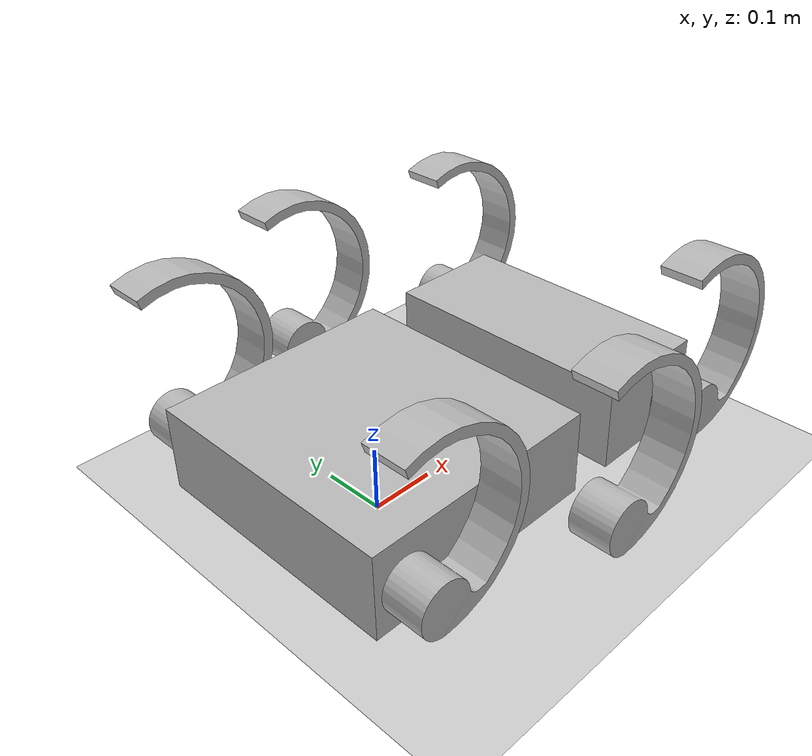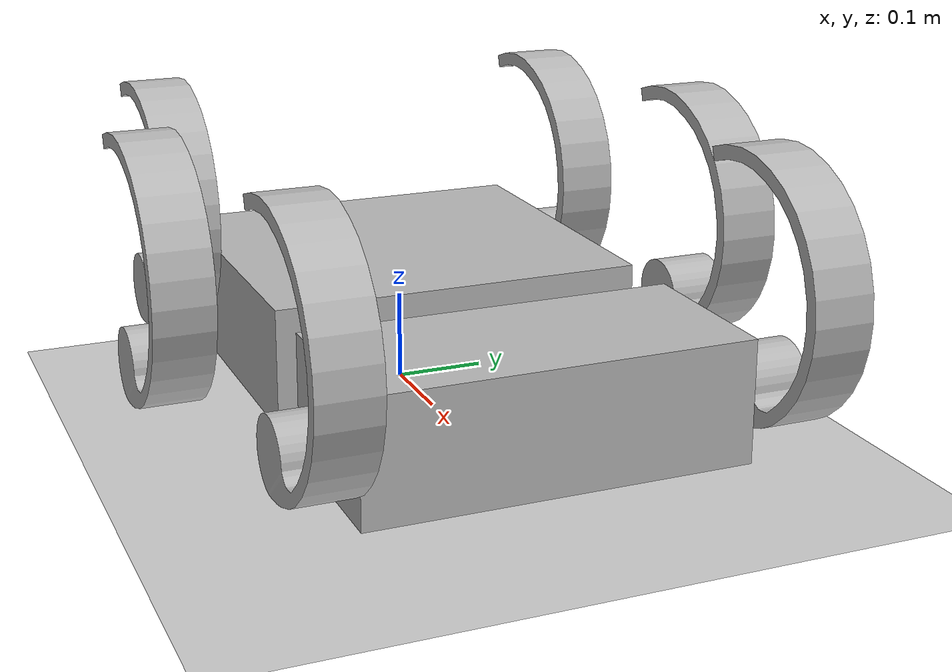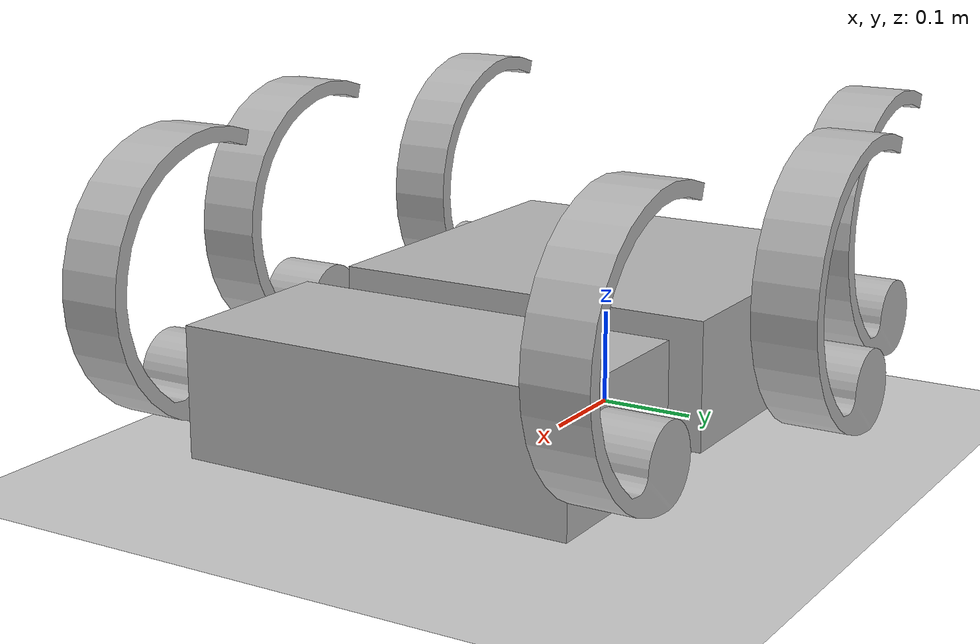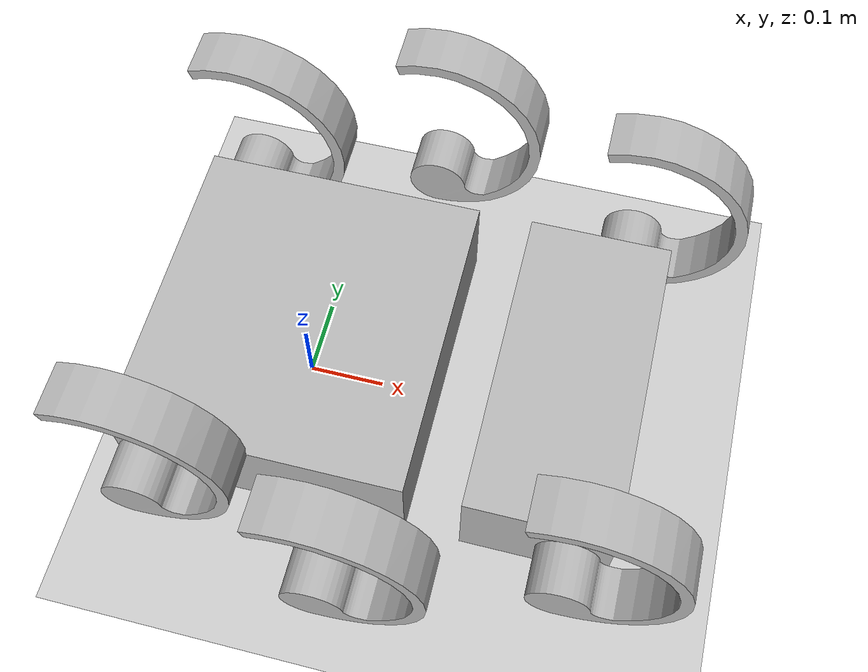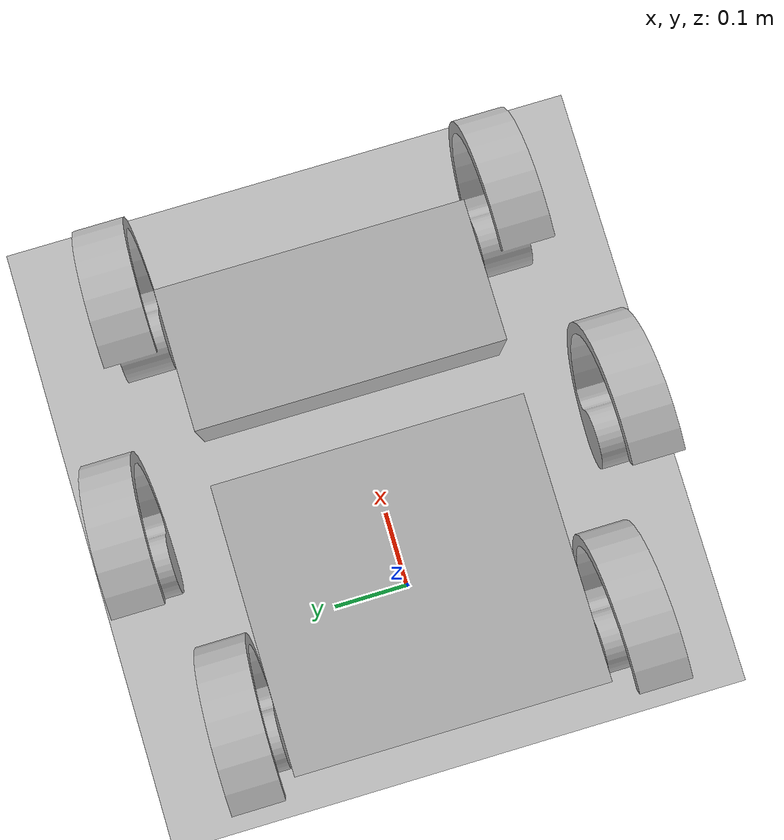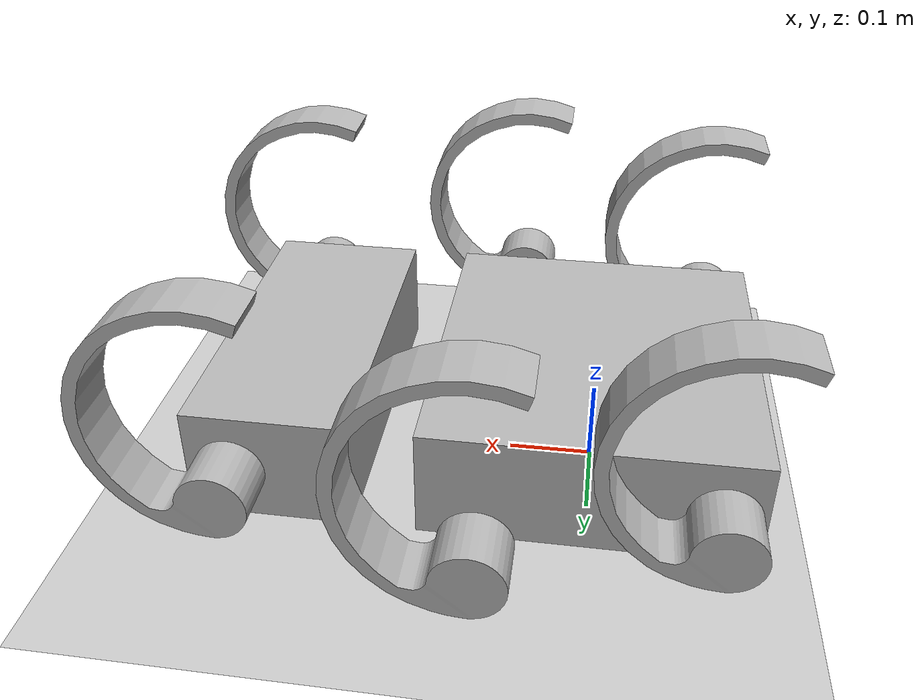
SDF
<?xml version="1.0"?>
<sdf version="1.4">
    <world name="default">

<!-- Ground Plane -->
<include>
    <uri>model://ground_plane</uri>
</include>

<include>
    <uri>model://sun</uri>
</include>

<model name="uneven_terrain">
    <pose>8 0 0  0 0 0</pose>
    <static>true</static>
    <link name="uneven terrain">
        <visual name="visual">
            <geometry>
                <mesh>
                    <uri>file://mountain2.dae</uri>
                    <scale> 3 5 1 </scale>
                </mesh>
            </geometry>
        </visual>
        <collision name="collision">
            <geometry>
                <mesh>
                    <uri>file://mountain2.dae</uri>
                    <scale> 3 5 1 </scale>
                </mesh>
            </geometry>
        </collision>
    </link>
</model>

<model name="my_robot">
    <static> false </static>
    <plugin name="model_push" filename="build/libmodel_push.so"/>
    <link name='chassis_front'>
        <pose> 0.35 0 .10 0 0 0 </pose>
        <inertial>
            <mass> 5 </mass>
            <inertia>
                <ixx> 0.1 </ixx>
                <ixy> 0 </ixy>
                <ixz> 0 </ixz>
                <iyy> 0.1 </iyy>
                <iyz> 0 </iyz>
                <izz> 0.1 </izz>
            </inertia>
        </inertial>
        <collision name='collision'>
            <geometry>
                <box>
                    <size> .186 .4064 .13 </size>
                </box>
            </geometry>
        </collision>
        <visual name='visual'>
            <pose> 0 0 0 0 0 0 </pose>
            <geometry>
                <box>
                    <size> .186 .4064 .13 </size>
                </box>
            </geometry>
        </visual>
        <self_collide> true </self_collide>
    </link>

    <link name='chassis_back'>
        <pose> 0 0 .1 0 0 0 </pose>
        <self_collide> true </self_collide>
        <collision name='collision'>
            <geometry>
                <box>
                    <size> .372 .4064 .13 </size>
                </box>
            </geometry>
        </collision>
        <inertial>
            <mass> 15 </mass>
            <inertia>
                <ixx> 0.1 </ixx>
                <ixy> 0 </ixy>
                <ixz> 0 </ixz>
                <iyy> 0.1 </iyy>
                <iyz> 0 </iyz>
                <izz> 0.1 </izz>
            </inertia>
        </inertial>
        <visual name='visual'>
            <pose> 0 0 0 0 0 0 </pose>
            <geometry>
                <box>
                    <size> .372 .4064 .13 </size>
                </box>
                </geometry>
            </visual>
        </link>

        <joint type="revolute" name="body_joint">
            <pose> -0.1 0 0 0 0 0 </pose>
            <child> chassis_front </child>
            <parent> chassis_back </parent>
            <axis>
                <limit>
                    <upper> 0.5 </upper>
                    <lower> -0.5  </lower>
                </limit>
                <xyz> 0 1 0 </xyz>
            </axis>
        </joint>

        <link name="leg1">
            <pose> 0.39 0.24  0.1 0 0 -1.57 </pose>

            <collision name="collision">
                <geometry>
                    <mesh>
                        <uri>file://leg.dae</uri>
                        <scale> .17 .17 .17 </scale>
                    </mesh>
                </geometry>
            </collision>

            <sensor name='leg1_contact' type='contact'>
                <visualize> true </visualize>
                <contact>
                    <collision> collision </collision>
                </contact>
            </sensor>

            <visual name="visual">
                <geometry>
                    <mesh>
                        <uri>file://leg.dae</uri>
                        <scale> .17 .17 .17 </scale>
                    </mesh>
                </geometry>
            </visual>
            <inertial>
                <mass> 0.5 </mass>
                <inertia>
                    <ixx>0.123962</ixx>
                    <ixy>0.000012</ixy>
                    <ixz>-0.000043</ixz>
                    <iyy>0.096146</iyy>
                    <iyz>-0.011166</iyz>
                    <izz>0.034739</izz>
                </inertia>
            </inertial>

            <gravity> 1 </gravity>

        </link>

        <joint type="revolute" name="leg1_joint">
            <pose> 0 0 0.0 0 0 0 </pose>
            <child> leg1 </child>
            <parent> chassis_front </parent>
            <axis>
                <xyz> 0 1 0 </xyz>
            </axis>
        </joint>

        <link name="leg4">
            <pose> 0.39 -0.24 0.1 0 0 -1.57 </pose>
            <inertial>
                <mass> 0.5 </mass>
                <inertia>
                    <ixx>0.123962</ixx>
                    <ixy>0.000012</ixy>
                    <ixz>-0.000043</ixz>
                    <iyy>0.096146</iyy>
                    <iyz>-0.011166</iyz>
                    <izz>0.034739</izz>
                </inertia>
            </inertial>

            <collision name="collision">
                <geometry>
                    <mesh>
                        <uri>file://leg.dae</uri>
                        <scale> .17 .17 .17 </scale>
                    </mesh>
                </geometry>
            </collision>

            <sensor name='leg4_contact' type='contact'>
                <visualize> true </visualize>
                <contact>
                    <collision> collision </collision>
                </contact>
            </sensor>

            <visual name="visual">
                <geometry>
                    <mesh>
                        <uri>file://leg.dae</uri>
                        <scale> .17 .17 .17 </scale>
                    </mesh>
                </geometry>
            </visual>

            <gravity> 1 </gravity>
        </link>

        <joint type="revolute" name="leg4_joint">
            <pose> 0 0 0 0 0 0 </pose>
            <child> leg4 </child>
            <parent> chassis_front </parent>
            <axis>
                <xyz> 0 1 0 </xyz>
            </axis>
        </joint>

        <link name="leg2">
            <pose> 0.11 0.31 0.1 0 0 -1.57 </pose>
            <inertial>
                <mass> 0.5 </mass>
                <inertia>
                    <ixx>0.123962</ixx>
                    <ixy>0.000012</ixy>
                    <ixz>-0.000043</ixz>
                    <iyy>0.096146</iyy>
                    <iyz>-0.011166</iyz>
                    <izz>0.034739</izz>
                </inertia>
            </inertial>

            <collision name="collision">
                <geometry>
                    <mesh>
                        <uri>file://leg.dae</uri>
                        <scale> .17 .17 .17 </scale>
                    </mesh>
                </geometry>
            </collision>

            <sensor name='leg2_contact' type='contact'>
                <visualize> true </visualize>
                <contact>
                    <collision> collision </collision>
                </contact>
            </sensor>

            <visual name="visual">
                <geometry>
                    <mesh>
                        <uri>file://leg.dae</uri>
                        <scale> .17 .17 .17 </scale>
                    </mesh>
                </geometry>
            </visual>

            <gravity> 1 </gravity>
        </link>

        <joint type="revolute" name="leg2_joint">
            <pose> 0 0 0 0 0 0 </pose>
            <child> leg2 </child>
            <parent> chassis_back </parent>
            <axis>
                <xyz> 0 1 0 </xyz>
            </axis>
        </joint>

        <link name="leg3">
            <pose> -0.14 0.24 0.1 0 0 -1.57 </pose>
            <inertial>
                <mass> 0.5 </mass>
                <inertia>
                    <ixx>0.123962</ixx>
                    <ixy>0.000012</ixy>
                    <ixz>-0.000043</ixz>
                    <iyy>0.096146</iyy>
                    <iyz>-0.011166</iyz>
                    <izz>0.034739</izz>
                </inertia>
            </inertial>

            <collision name="collision">
                <geometry>
                    <mesh>
                        <uri>file://leg.dae</uri>
                        <scale> .17 .17 .17 </scale>
                    </mesh>
                </geometry>
            </collision>

            <sensor name='leg3_contact' type='contact'>
                <visualize> true </visualize>
                <contact>
                    <collision> collision </collision>
                </contact>
            </sensor>

            <visual name="visual">
                <geometry>
                    <mesh>
                        <uri>file://leg.dae</uri>
                        <scale> .17 .17 .17 </scale>
                    </mesh>
                </geometry>
            </visual>

            <gravity> 1 </gravity>
        </link>

        <joint type="revolute" name="leg3_joint">
            <pose> 0 0 0 0 0 0 </pose>
            <child> leg3 </child>
            <parent> chassis_back </parent>
            <axis>
                <xyz> 0 1 0 </xyz>
            </axis>
        </joint>

        <link name="leg5">
            <pose> 0.11 -0.31 0.1 0 0 -1.57 </pose>
            <inertial>
                <mass> 0.5 </mass>
                <inertia>
                    <ixx>0.123962</ixx>
                    <ixy>0.000012</ixy>
                    <ixz>-0.000043</ixz>
                    <iyy>0.096146</iyy>
                    <iyz>-0.011166</iyz>
                    <izz>0.034739</izz>
                </inertia>
            </inertial>

            <collision name="collision">
                <geometry>
                    <mesh>
                        <uri>file://leg.dae</uri>
                        <scale> .17 .17 .17 </scale>
                    </mesh>
                </geometry>
            </collision>

            <sensor name='leg5_contact' type='contact'>
                <visualize> true </visualize>
                <contact>
                    <collision> collision </collision>
                </contact>
            </sensor>

            <visual name="visual">
                <geometry>
                    <mesh>
                        <uri>file://leg.dae</uri>
                        <scale> .17 .17 .17 </scale>
                    </mesh>
                </geometry>
            </visual>

            <gravity> 1 </gravity>
        </link>

        <joint type="revolute" name="leg5_joint">
            <pose> 0 0 0 0 0 0 </pose>
            <child> leg5 </child>
            <parent> chassis_back </parent>
            <axis>
                <xyz> 0 1 0 </xyz>
            </axis>
        </joint>

        <link name="leg6">
            <pose> -0.14 -0.24 0.1 0 0 -1.57 </pose>
            <inertial>
                <mass> 0.5 </mass>
                <inertia>
                    <ixx>0.123962</ixx>
                    <ixy>0.000012</ixy>
                    <ixz>-0.000043</ixz>
                    <iyy>0.096146</iyy>
                    <iyz>-0.011166</iyz>
                    <izz>0.034739</izz>
                </inertia>
            </inertial>

            <collision name="collision">
                <geometry>
                    <mesh>
                        <uri>file://leg.dae</uri>
                        <scale> .17 .17 .17 </scale>
                    </mesh>
                </geometry>
            </collision>

            <sensor name='leg6_contact' type='contact'>
                <visualize> true </visualize>
                <contact>
                    <collision> collision </collision>
                </contact>
            </sensor>

            <visual name="visual">
                <geometry>
                    <mesh>
                        <uri>file://leg.dae</uri>
                        <scale> .17 .17 .17 </scale>
                    </mesh>
                </geometry>
            </visual>

            <gravity> 1 </gravity>
        </link>

        <joint type="revolute" name="leg6_joint">
            <pose> 0 0 0 0 0 0 </pose>
            <child> leg6 </child>
            <parent> chassis_back </parent>
            <axis>
                <xyz> 0 1 0 </xyz>
            </axis>
        </joint>
    </model>

</world>
                          </sdf>
